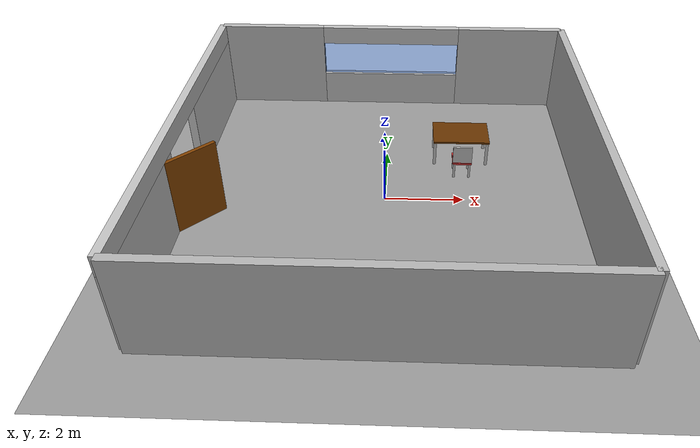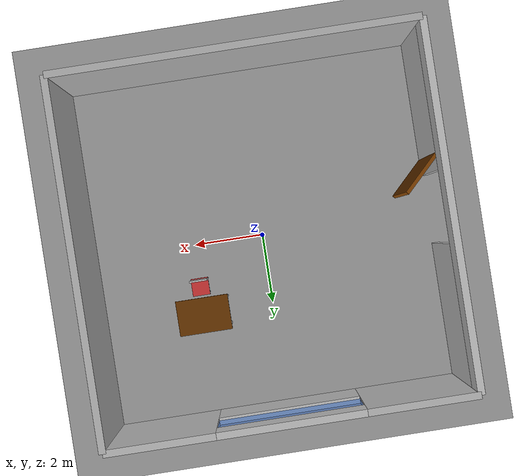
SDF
<?xml version="1.0" ?>
<sdf version="1.8">
  <world name="my_world">
    <physics name="1ms" type="ignored">
      <max_step_size>0.001</max_step_size>
      <real_time_factor>1.0</real_time_factor>
    </physics>

    <!-- Required plugins -->
    <plugin filename="gz-sim-physics-system" name="gz::sim::systems::Physics"></plugin>
    <plugin filename="gz-sim-user-commands-system" name="gz::sim::systems::UserCommands"></plugin>
    <plugin filename="gz-sim-scene-broadcaster-system" name="gz::sim::systems::SceneBroadcaster"></plugin>
    <plugin filename="gz-sim-contact-system" name="gz::sim::systems::Contact"></plugin>

    <!-- Bright Day Scene with Sky -->
    <scene>
      <ambient>1.0 1.0 1.0 1.0</ambient>
      <background>0.5 0.8 0.9 1.0</background>
      <shadows>false</shadows>
    </scene>

    <light type="directional" name="sun">
      <cast_shadows>true</cast_shadows>
      <pose>0 0 10 0 0 0</pose>
      <diffuse>0.8 0.8 0.8 1</diffuse>
      <specular>0.2 0.2 0.2 1</specular>
      <attenuation>
        <range>1000</range>
        <constant>0.9</constant>
        <linear>0.01</linear>
        <quadratic>0.001</quadratic>
      </attenuation>
      <direction>-0.5 0.1 -0.9</direction>
    </light>

    <model name="ground_plane">
      <static>true</static>
      <link name="link">
        <collision name="collision"><geometry><plane><normal>0 0 1</normal><size>100 100</size></plane></geometry></collision>
        <visual name="visual">
          <geometry><plane><normal>0 0 1</normal><size>100 100</size></plane></geometry>
          <material>
            <ambient>0.6 0.6 0.6 1</ambient>
            <diffuse>0.6 0.6 0.6 1</diffuse>
          </material>
        </visual>
      </link>
    </model>

    <!-- South and East Outer Walls (Solid) -->
    <model name="wall_south">
      <static>true</static>
      <pose>0 -5 1.25 0 0 0</pose>
      <link name="link">
        <collision name="collision"><geometry><box><size>10 0.2 2.5</size></box></geometry></collision>
        <visual name="visual">
          <geometry><box><size>10 0.2 2.5</size></box></geometry>
          <material>
            <ambient>0.7 0.7 0.7 1</ambient>
            <diffuse>0.7 0.7 0.7 1</diffuse>
          </material>
        </visual>
      </link>
    </model>
    <model name="wall_east">
      <static>true</static>
      <pose>5 0 1.25 0 0 0</pose>
      <link name="link">
        <collision name="collision"><geometry><box><size>0.2 10 2.5</size></box></geometry></collision>
        <visual name="visual">
          <geometry><box><size>0.2 10 2.5</size></box></geometry>
          <material>
            <ambient>0.71 0.71 0.71 1</ambient>
            <diffuse>0.71 0.71 0.71 1</diffuse>
          </material>
        </visual>
      </link>
    </model>

    <!-- North Wall with a Window -->
    <model name="wall_north_window">
      <static>true</static>
      <link name="left_wall">
        <pose>-3.5 5 1.25 0 0 0</pose>
        <collision name="col"><geometry><box><size>3 0.2 2.5</size></box></geometry></collision>
        <visual name="vis">
          <geometry><box><size>3 0.2 2.5</size></box></geometry>
          <material>
            <ambient>0.72 0.72 0.72 1</ambient>
            <diffuse>0.72 0.72 0.72 1</diffuse>
          </material>
        </visual>
      </link>
      <link name="right_wall">
        <pose>3.5 5 1.25 0 0 0</pose>
        <collision name="col"><geometry><box><size>3 0.2 2.5</size></box></geometry></collision>
        <visual name="vis">
          <geometry><box><size>3 0.2 2.5</size></box></geometry>
          <material>
            <ambient>0.73 0.73 0.73 1</ambient>
            <diffuse>0.73 0.73 0.73 1</diffuse>
          </material>
        </visual>
      </link>
      <link name="bottom_wall">
        <pose>0 5 0.5 0 0 0</pose>
        <collision name="col"><geometry><box><size>4 0.2 1.0</size></box></geometry></collision>
        <visual name="vis">
          <geometry><box><size>4 0.2 1.0</size></box></geometry>
          <material>
            <ambient>0.74 0.74 0.74 1</ambient>
            <diffuse>0.74 0.74 0.74 1</diffuse>
          </material>
        </visual>
      </link>
      <link name="top_wall">
        <pose>0 5 2.25 0 0 0</pose>
        <collision name="col"><geometry><box><size>4 0.2 0.5</size></box></geometry></collision>
        <visual name="vis">
          <geometry><box><size>4 0.2 0.5</size></box></geometry>
          <material>
            <ambient>0.75 0.75 0.75 1</ambient>
            <diffuse>0.75 0.75 0.75 1</diffuse>
          </material>
        </visual>
      </link>
      <!-- Glass Window (Translucent) -->
      <link name="glass">
        <pose>0 5 1.5 0 0 0</pose>
        <visual name="vis">
          <geometry><box><size>4 0.05 1.0</size></box></geometry>
          <material>
            <ambient>0.2 0.5 1.0 0.5</ambient>
            <diffuse>0.2 0.5 1.0 0.5</diffuse>
          </material>
        </visual>
      </link>
    </model>

    <!-- West Wall with a Doorway and an open Door -->
    <model name="wall_west_door">
      <static>true</static>
      <link name="top_wall">
        <pose>-5 0 2.25 0 0 0</pose>
        <collision name="col"><geometry><box><size>0.2 10 0.5</size></box></geometry></collision>
        <visual name="vis">
          <geometry><box><size>0.2 10 0.5</size></box></geometry>
          <material>
            <ambient>0.76 0.76 0.76 1</ambient>
            <diffuse>0.76 0.76 0.76 1</diffuse>
          </material>
        </visual>
      </link>
      <link name="left_wall">
        <pose>-5 -3.0 1.0 0 0 0</pose>
        <collision name="col"><geometry><box><size>0.2 4.0 2.0</size></box></geometry></collision>
        <visual name="vis">
          <geometry><box><size>0.2 4.0 2.0</size></box></geometry>
          <material>
            <ambient>0.77 0.77 0.77 1</ambient>
            <diffuse>0.77 0.77 0.77 1</diffuse>
          </material>
        </visual>
      </link>
      <link name="right_wall">
        <pose>-5 3.0 1.0 0 0 0</pose>
        <collision name="col"><geometry><box><size>0.2 4.0 2.0</size></box></geometry></collision>
        <visual name="vis">
          <geometry><box><size>0.2 4.0 2.0</size></box></geometry>
          <material>
            <ambient>0.78 0.78 0.78 1</ambient>
            <diffuse>0.78 0.78 0.78 1</diffuse>
          </material>
        </visual>
      </link>
      <!-- A slightly open door -->
      <link name="door">
        <pose>-4.5 -1.0 1.0 0 0 0.785</pose>
        <collision name="col"><geometry><box><size>1.4 0.1 2.0</size></box></geometry></collision>
        <visual name="vis">
          <geometry><box><size>1.4 0.1 2.0</size></box></geometry>
          <material>
            <ambient>0.5 0.25 0.0 1</ambient>
            <diffuse>0.5 0.25 0.0 1</diffuse>
          </material>
        </visual>
      </link>
    </model>

    <!-- Dining Table -->
    <model name="table">
      <static>true</static>
      <link name="table_top">
        <pose>2 2 0.75 0 0 0</pose>
        <collision name="col"><geometry><box><size>1.5 1.0 0.05</size></box></geometry></collision>
        <visual name="vis">
          <geometry><box><size>1.5 1.0 0.05</size></box></geometry>
          <material>
            <ambient>0.4 0.2 0.0 1</ambient>
            <diffuse>0.4 0.2 0.0 1</diffuse>
          </material>
        </visual>
      </link>
      <link name="leg1">
        <pose>1.3 1.6 0.375 0 0 0</pose>
        <collision name="col"><geometry><cylinder><radius>0.04</radius><length>0.75</length></cylinder></geometry></collision>
        <visual name="vis"><geometry><cylinder><radius>0.04</radius><length>0.75</length></cylinder></geometry></visual>
      </link>
      <link name="leg2">
        <pose>2.7 1.6 0.375 0 0 0</pose>
        <collision name="col"><geometry><cylinder><radius>0.04</radius><length>0.75</length></cylinder></geometry></collision>
        <visual name="vis"><geometry><cylinder><radius>0.04</radius><length>0.75</length></cylinder></geometry></visual>
      </link>
      <link name="leg3">
        <pose>1.3 2.4 0.375 0 0 0</pose>
        <collision name="col"><geometry><cylinder><radius>0.04</radius><length>0.75</length></cylinder></geometry></collision>
        <visual name="vis"><geometry><cylinder><radius>0.04</radius><length>0.75</length></cylinder></geometry></visual>
      </link>
      <link name="leg4">
        <pose>2.7 2.4 0.375 0 0 0</pose>
        <collision name="col"><geometry><cylinder><radius>0.04</radius><length>0.75</length></cylinder></geometry></collision>
        <visual name="vis"><geometry><cylinder><radius>0.04</radius><length>0.75</length></cylinder></geometry></visual>
      </link>
    </model>

    <!-- Chair -->
    <model name="chair">
      <static>true</static>
      <link name="seat">
        <pose>2 1.2 0.45 0 0 0</pose>
        <collision name="col"><geometry><box><size>0.5 0.5 0.05</size></box></geometry></collision>
        <visual name="vis">
          <geometry><box><size>0.5 0.5 0.05</size></box></geometry>
          <material>
            <ambient>0.8 0.2 0.2 1</ambient>
            <diffuse>0.8 0.2 0.2 1</diffuse>
          </material>
        </visual>
      </link>
      <link name="backrest">
        <pose>2 1.0 0.7 0 0 0</pose>
        <collision name="col"><geometry><box><size>0.5 0.05 0.5</size></box></geometry></collision>
        <visual name="vis"><geometry><box><size>0.5 0.05 0.5</size></box></geometry></visual>
      </link>
      <link name="leg1">
        <pose>1.8 1.0 0.225 0 0 0</pose>
        <collision name="col"><geometry><cylinder><radius>0.03</radius><length>0.45</length></cylinder></geometry></collision>
        <visual name="vis"><geometry><cylinder><radius>0.03</radius><length>0.45</length></cylinder></geometry></visual>
      </link>
      <link name="leg2">
        <pose>2.2 1.0 0.225 0 0 0</pose>
        <collision name="col"><geometry><cylinder><radius>0.03</radius><length>0.45</length></cylinder></geometry></collision>
        <visual name="vis"><geometry><cylinder><radius>0.03</radius><length>0.45</length></cylinder></geometry></visual>
      </link>
      <link name="leg3">
        <pose>1.8 1.4 0.225 0 0 0</pose>
        <collision name="col"><geometry><cylinder><radius>0.03</radius><length>0.45</length></cylinder></geometry></collision>
        <visual name="vis"><geometry><cylinder><radius>0.03</radius><length>0.45</length></cylinder></geometry></visual>
      </link>
      <link name="leg4">
        <pose>2.2 1.4 0.225 0 0 0</pose>
        <collision name="col"><geometry><cylinder><radius>0.03</radius><length>0.45</length></cylinder></geometry></collision>
        <visual name="vis"><geometry><cylinder><radius>0.03</radius><length>0.45</length></cylinder></geometry></visual>
      </link>
    </model>
  </world>
</sdf>
